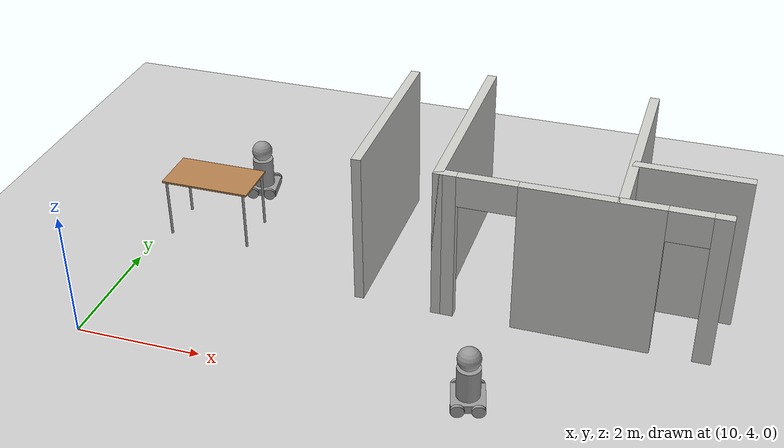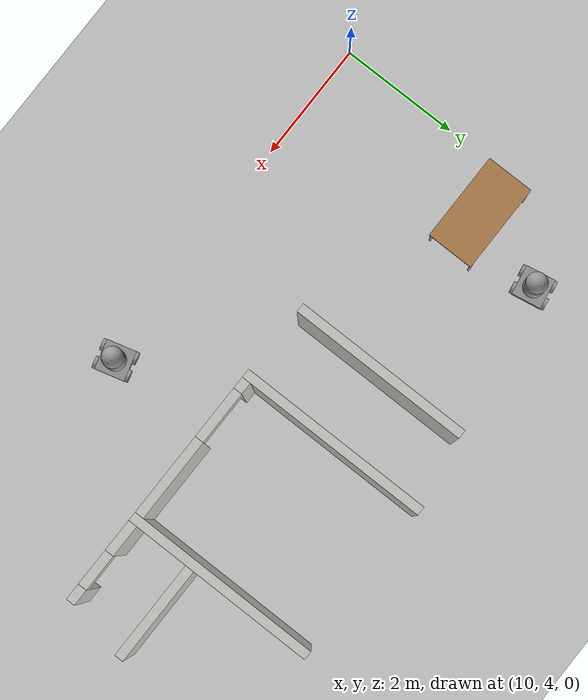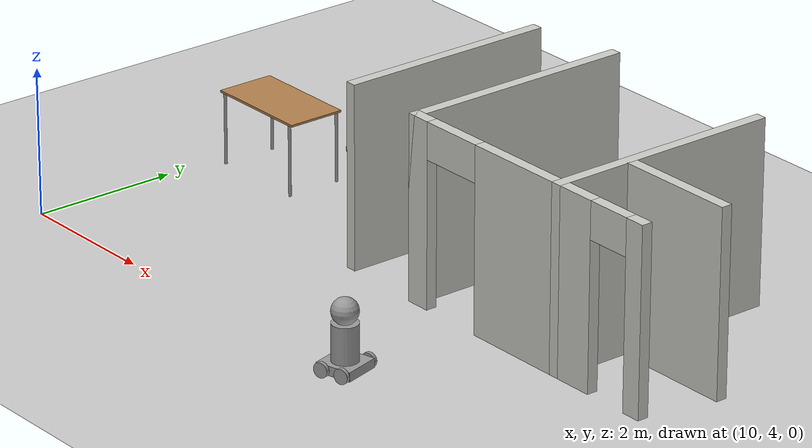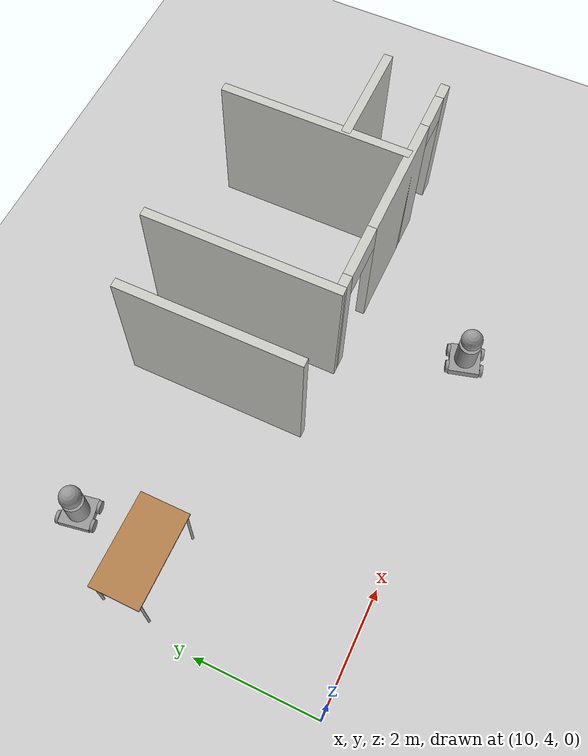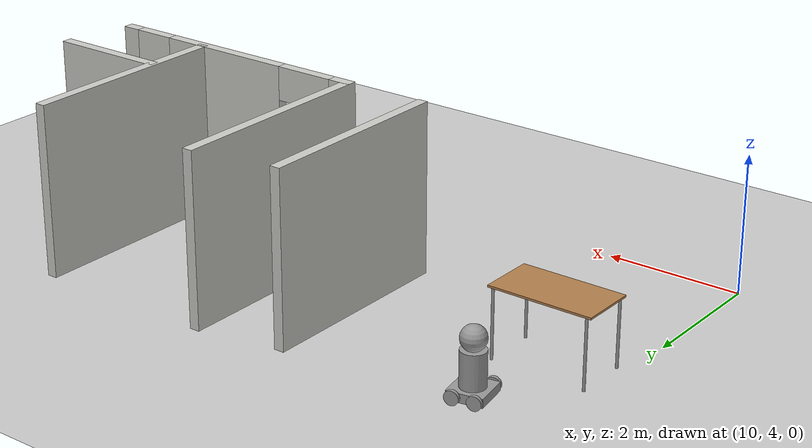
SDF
<sdf version="1.6">
 <world name="default">
  <model name="ground_plane">
   <static>1</static>
   <link name="link">
    <collision name="collision">
     <geometry><plane><normal>0 0 1</normal><size>100 100</size></plane></geometry>
     <surface>
      <contact><collide_bitmask>65535</collide_bitmask></contact>
      <friction><ode><mu>100</mu><mu2>50</mu2></ode></friction>
     </surface>
    </collision>
    <visual name="visual">
     <cast_shadows>0</cast_shadows>
     <geometry><plane><normal>0 0 1</normal><size>100 100</size></plane></geometry>
     <material>
      <script><uri>file://media/materials/scripts/gazebo.material</uri><name>Gazebo/Grey</name></script>
     </material>
    </visual>
   </link>
  </model>
  <model name="newOffice">
   <pose>10.3935 1.72643 0 0 -0 0</pose>
   <link name="Wall_13">
    <collision name="Wall_13_Collision">
     <geometry><box><size>3.25 0.15 2.5</size></box></geometry>
     <pose>0 0 1.25 0 -0 0</pose>
    </collision>
    <visual name="Wall_13_Visual">
     <pose>0 0 1.25 0 -0 0</pose>
     <geometry><box><size>3.25 0.15 2.5</size></box></geometry>
     <material>
      <script><uri>file://media/materials/scripts/gazebo.material</uri><name>Gazebo/CeilingTiled</name></script>
      <ambient>0.760784 0.662745 0.627451 1</ambient>
     </material>
     <meta><layer>0</layer></meta>
    </visual>
    <pose>4.6433 5.89365 0 0 0 -1.5708</pose>
   </link>
   <link name="Wall_14">
    <pose>6.6933 4.34365 0 0 -0 0</pose>
    <visual name="Wall_14_Visual_0">
     <pose>-1.94946 0 1.25 0 -0 0</pose>
     <geometry><box><size>0.351082 0.15 2.5</size></box></geometry>
     <material>
      <script><uri>file://media/materials/scripts/gazebo.material</uri><name>Gazebo/CeilingTiled</name></script>
      <ambient>0.760784 0.662745 0.627451 1</ambient>
     </material>
     <meta><layer>0</layer></meta>
    </visual>
    <collision name="Wall_14_Collision_0">
     <geometry><box><size>0.351082 0.15 2.5</size></box></geometry>
     <pose>-1.94946 0 1.25 0 -0 0</pose>
    </collision>
    <visual name="Wall_14_Visual_1">
     <pose>0.175003 0 1.25 0 -0 0</pose>
     <geometry><box><size>2.09784 0.15 2.5</size></box></geometry>
     <material>
      <script><uri>file://media/materials/scripts/gazebo.material</uri><name>Gazebo/CeilingTiled</name></script>
      <ambient>0.760784 0.662745 0.627451 1</ambient>
     </material>
     <meta><layer>0</layer></meta>
    </visual>
    <collision name="Wall_14_Collision_1">
     <geometry><box><size>2.09784 0.15 2.5</size></box></geometry>
     <pose>0.175003 0 1.25 0 -0 0</pose>
    </collision>
    <visual name="Wall_14_Visual_2">
     <pose>1.98681 0 1.25 0 -0 0</pose>
     <geometry><box><size>0.276388 0.15 2.5</size></box></geometry>
     <material>
      <script><uri>file://media/materials/scripts/gazebo.material</uri><name>Gazebo/CeilingTiled</name></script>
      <ambient>0.760784 0.662745 0.627451 1</ambient>
     </material>
     <meta><layer>0</layer></meta>
    </visual>
    <collision name="Wall_14_Collision_2">
     <geometry><box><size>0.276388 0.15 2.5</size></box></geometry>
     <pose>1.98681 0 1.25 0 -0 0</pose>
    </collision>
    <visual name="Wall_14_Visual_3">
     <pose>-1.32392 0 2.25 0 -0 0</pose>
     <geometry><box><size>0.9 0.15 0.5</size></box></geometry>
     <material>
      <script><uri>file://media/materials/scripts/gazebo.material</uri><name>Gazebo/CeilingTiled</name></script>
      <ambient>0.760784 0.662745 0.627451 1</ambient>
     </material>
     <meta><layer>0</layer></meta>
    </visual>
    <collision name="Wall_14_Collision_3">
     <geometry><box><size>0.9 0.15 0.5</size></box></geometry>
     <pose>-1.32392 0 2.25 0 -0 0</pose>
    </collision>
    <visual name="Wall_14_Visual_4">
     <pose>1.53627 0 2.25 0 -0 0</pose>
     <geometry><box><size>0.624688 0.15 0.5</size></box></geometry>
     <material>
      <script><uri>file://media/materials/scripts/gazebo.material</uri><name>Gazebo/CeilingTiled</name></script>
      <ambient>0.760784 0.662745 0.627451 1</ambient>
     </material>
     <meta><layer>0</layer></meta>
    </visual>
    <collision name="Wall_14_Collision_4">
     <geometry><box><size>0.624688 0.15 0.5</size></box></geometry>
     <pose>1.53627 0 2.25 0 -0 0</pose>
    </collision>
   </link>
   <link name="Wall_16">
    <collision name="Wall_16_Collision">
     <geometry><box><size>3.25 0.15 2.5</size></box></geometry>
     <pose>0 0 1.25 0 -0 0</pose>
    </collision>
    <visual name="Wall_16_Visual">
     <pose>0 0 1.25 0 -0 0</pose>
     <geometry><box><size>3.25 0.15 2.5</size></box></geometry>
     <material>
      <script><uri>file://media/materials/scripts/gazebo.material</uri><name>Gazebo/CeilingTiled</name></script>
      <ambient>0.760784 0.662745 0.627451 1</ambient>
     </material>
     <meta><layer>0</layer></meta>
    </visual>
    <pose>7.29516 5.89365 0 0 0 -1.5708</pose>
   </link>
   <link name="Wall_18">
    <collision name="Wall_18_Collision">
     <geometry><box><size>1.75 0.15 2.5</size></box></geometry>
     <pose>0 0 1.25 0 -0 0</pose>
    </collision>
    <visual name="Wall_18_Visual">
     <pose>0 0 1.25 0 -0 0</pose>
     <geometry><box><size>1.75 0.15 2.5</size></box></geometry>
     <material>
      <script><uri>file://media/materials/scripts/gazebo.material</uri><name>Gazebo/CeilingTiled</name></script>
      <ambient>0.760784 0.662745 0.627451 1</ambient>
     </material>
     <meta><layer>0</layer></meta>
    </visual>
    <pose>8.14169 5.3966 0 0 -0 0</pose>
   </link>
   <link name="Wall_9">
    <collision name="Wall_9_Collision">
     <geometry><box><size>3 0.15 2.5</size></box></geometry>
     <pose>0 0 1.25 0 -0 0</pose>
    </collision>
    <visual name="Wall_9_Visual">
     <pose>0 0 1.25 0 -0 0</pose>
     <geometry><box><size>3 0.15 2.5</size></box></geometry>
     <material>
      <script><uri>file://media/materials/scripts/gazebo.material</uri><name>Gazebo/CeilingTiled</name></script>
      <ambient>0.760784 0.662745 0.627451 1</ambient>
     </material>
     <meta><layer>0</layer></meta>
    </visual>
    <pose>3.39789 5.79808 0 0 -0 1.5708</pose>
   </link>
   <static>1</static>
  </model>
  <model name="miniRobo">
   <link name="link_0">
    <pose>0 0 -0.145 0 -0 0</pose>
    <inertial>
     <mass>1</mass>
     <inertia>
      <ixx>0.166667</ixx>
      <ixy>0</ixy>
      <ixz>0</ixz>
      <iyy>0.166667</iyy>
      <iyz>0</iyz>
      <izz>0.166667</izz>
     </inertia>
    </inertial>
    <visual name="visual">
     <geometry><box><size>0.5 0.5 0.125</size></box></geometry>
     <material>
      <lighting>1</lighting>
      <script><uri>file://media/materials/scripts/gazebo.material</uri><name>Gazebo/Grey</name></script>
      <shader type="pixel"><normal_map>__default__</normal_map></shader>
      <ambient>0.3 0.3 0.3 1</ambient>
      <diffuse>0.7 0.7 0.7 1</diffuse>
      <specular>0.01 0.01 0.01 1</specular>
      <emissive>0 0 0 1</emissive>
     </material>
    </visual>
    <collision name="collision">
     <geometry><box><size>0.5 0.5 0.125</size></box></geometry>
     <surface>
      <friction>
       <ode><mu>1</mu><mu2>1</mu2><fdir1>0 0 0</fdir1><slip1>0</slip1><slip2>0</slip2></ode>
       <torsional>
        <coefficient>1</coefficient>
        <patch_radius>0</patch_radius>
        <surface_radius>0</surface_radius>
        <use_patch_radius>1</use_patch_radius>
        <ode><slip>0</slip></ode>
       </torsional>
      </friction>
      <bounce><restitution_coefficient>0</restitution_coefficient><threshold>1e+06</threshold></bounce>
      <contact>
       <collide_without_contact>0</collide_without_contact>
       <collide_without_contact_bitmask>1</collide_without_contact_bitmask>
       <collide_bitmask>1</collide_bitmask>
       <ode>
        <soft_cfm>0</soft_cfm>
        <soft_erp>0.2</soft_erp>
        <kp>1e+13</kp>
        <kd>1</kd>
        <max_vel>0.01</max_vel>
        <min_depth>0</min_depth>
       </ode>
       <bullet>
        <split_impulse>1</split_impulse>
        <split_impulse_penetration_threshold>-0.01</split_impulse_penetration_threshold>
        <soft_cfm>0</soft_cfm>
        <soft_erp>0.2</soft_erp>
        <kp>1e+13</kp>
        <kd>1</kd>
       </bullet>
      </contact>
     </surface>
    </collision>
   </link>
   <link name="link_1_clone">
    <pose>0.15 -0.27501 -0.145 0 -0 0</pose>
    <inertial>
     <mass>1</mass>
     <inertia><ixx>0.145833</ixx><ixy>0</ixy><ixz>0</ixz><iyy>0.145833</iyy><iyz>0</iyz><izz>0.125</izz></inertia>
    </inertial>
    <visual name="visual">
     <pose>0 0 0 1.5707 -0 0</pose>
     <geometry><cylinder><radius>0.1</radius><length>0.05</length></cylinder></geometry>
     <material>
      <lighting>1</lighting>
      <script><uri>file://media/materials/scripts/gazebo.material</uri><name>Gazebo/Grey</name></script>
      <shader type="pixel"><normal_map>__default__</normal_map></shader>
      <ambient>0.3 0.3 0.3 1</ambient>
      <diffuse>0.7 0.7 0.7 1</diffuse>
      <specular>0.01 0.01 0.01 1</specular>
      <emissive>0 0 0 1</emissive>
     </material>
    </visual>
    <collision name="collision">
     <pose>0 0 0 1.5707 -0 0</pose>
     <geometry><cylinder><radius>0.1</radius><length>0.05</length></cylinder></geometry>
     <surface>
      <friction>
       <ode><mu>1</mu><mu2>1</mu2><fdir1>0 0 0</fdir1><slip1>0</slip1><slip2>0</slip2></ode>
       <torsional>
        <coefficient>1</coefficient>
        <patch_radius>0</patch_radius>
        <surface_radius>0</surface_radius>
        <use_patch_radius>1</use_patch_radius>
        <ode><slip>0</slip></ode>
       </torsional>
      </friction>
      <bounce><restitution_coefficient>0</restitution_coefficient><threshold>1e+06</threshold></bounce>
      <contact>
       <collide_without_contact>0</collide_without_contact>
       <collide_without_contact_bitmask>1</collide_without_contact_bitmask>
       <collide_bitmask>1</collide_bitmask>
       <ode>
        <soft_cfm>0</soft_cfm>
        <soft_erp>0.2</soft_erp>
        <kp>1e+13</kp>
        <kd>1</kd>
        <max_vel>0.01</max_vel>
        <min_depth>0</min_depth>
       </ode>
       <bullet>
        <split_impulse>1</split_impulse>
        <split_impulse_penetration_threshold>-0.01</split_impulse_penetration_threshold>
        <soft_cfm>0</soft_cfm>
        <soft_erp>0.2</soft_erp>
        <kp>1e+13</kp>
        <kd>1</kd>
       </bullet>
      </contact>
     </surface>
    </collision>
   </link>
   <link name="link_1_clone_0">
    <pose>-0.15 0.27501 -0.145 0 -0 0</pose>
    <inertial>
     <mass>1</mass>
     <inertia><ixx>0.145833</ixx><ixy>0</ixy><ixz>0</ixz><iyy>0.145833</iyy><iyz>0</iyz><izz>0.125</izz></inertia>
    </inertial>
    <visual name="visual">
     <pose>0 0 0 1.5707 -0 0</pose>
     <geometry><cylinder><radius>0.1</radius><length>0.05</length></cylinder></geometry>
     <material>
      <lighting>1</lighting>
      <script><uri>file://media/materials/scripts/gazebo.material</uri><name>Gazebo/Grey</name></script>
      <shader type="pixel"><normal_map>__default__</normal_map></shader>
      <ambient>0.3 0.3 0.3 1</ambient>
      <diffuse>0.7 0.7 0.7 1</diffuse>
      <specular>0.01 0.01 0.01 1</specular>
      <emissive>0 0 0 1</emissive>
     </material>
    </visual>
    <collision name="collision">
     <pose>0 0 0 1.5707 -0 0</pose>
     <geometry><cylinder><radius>0.1</radius><length>0.05</length></cylinder></geometry>
     <surface>
      <friction>
       <ode><mu>1</mu><mu2>1</mu2><fdir1>0 0 0</fdir1><slip1>0</slip1><slip2>0</slip2></ode>
       <torsional>
        <coefficient>1</coefficient>
        <patch_radius>0</patch_radius>
        <surface_radius>0</surface_radius>
        <use_patch_radius>1</use_patch_radius>
        <ode><slip>0</slip></ode>
       </torsional>
      </friction>
      <bounce><restitution_coefficient>0</restitution_coefficient><threshold>1e+06</threshold></bounce>
      <contact>
       <collide_without_contact>0</collide_without_contact>
       <collide_without_contact_bitmask>1</collide_without_contact_bitmask>
       <collide_bitmask>1</collide_bitmask>
       <ode>
        <soft_cfm>0</soft_cfm>
        <soft_erp>0.2</soft_erp>
        <kp>1e+13</kp>
        <kd>1</kd>
        <max_vel>0.01</max_vel>
        <min_depth>0</min_depth>
       </ode>
       <bullet>
        <split_impulse>1</split_impulse>
        <split_impulse_penetration_threshold>-0.01</split_impulse_penetration_threshold>
        <soft_cfm>0</soft_cfm>
        <soft_erp>0.2</soft_erp>
        <kp>1e+13</kp>
        <kd>1</kd>
       </bullet>
      </contact>
     </surface>
    </collision>
   </link>
   <link name="link_1_clone_1">
    <pose>0.15 0.27501 -0.145 0 -0 0</pose>
    <inertial>
     <mass>1</mass>
     <inertia><ixx>0.145833</ixx><ixy>0</ixy><ixz>0</ixz><iyy>0.145833</iyy><iyz>0</iyz><izz>0.125</izz></inertia>
    </inertial>
    <visual name="visual">
     <pose>0 0 0 1.5707 -0 0</pose>
     <geometry><cylinder><radius>0.1</radius><length>0.05</length></cylinder></geometry>
     <material>
      <lighting>1</lighting>
      <script><uri>file://media/materials/scripts/gazebo.material</uri><name>Gazebo/Grey</name></script>
      <shader type="pixel"><normal_map>__default__</normal_map></shader>
      <ambient>0.3 0.3 0.3 1</ambient>
      <diffuse>0.7 0.7 0.7 1</diffuse>
      <specular>0.01 0.01 0.01 1</specular>
      <emissive>0 0 0 1</emissive>
     </material>
    </visual>
    <collision name="collision">
     <pose>0 0 0 1.5707 -0 0</pose>
     <geometry><cylinder><radius>0.1</radius><length>0.05</length></cylinder></geometry>
     <surface>
      <friction>
       <ode><mu>1</mu><mu2>1</mu2><fdir1>0 0 0</fdir1><slip1>0</slip1><slip2>0</slip2></ode>
       <torsional>
        <coefficient>1</coefficient>
        <patch_radius>0</patch_radius>
        <surface_radius>0</surface_radius>
        <use_patch_radius>1</use_patch_radius>
        <ode><slip>0</slip></ode>
       </torsional>
      </friction>
      <bounce><restitution_coefficient>0</restitution_coefficient><threshold>1e+06</threshold></bounce>
      <contact>
       <collide_without_contact>0</collide_without_contact>
       <collide_without_contact_bitmask>1</collide_without_contact_bitmask>
       <collide_bitmask>1</collide_bitmask>
       <ode>
        <soft_cfm>0</soft_cfm>
        <soft_erp>0.2</soft_erp>
        <kp>1e+13</kp>
        <kd>1</kd>
        <max_vel>0.01</max_vel>
        <min_depth>0</min_depth>
       </ode>
       <bullet>
        <split_impulse>1</split_impulse>
        <split_impulse_penetration_threshold>-0.01</split_impulse_penetration_threshold>
        <soft_cfm>0</soft_cfm>
        <soft_erp>0.2</soft_erp>
        <kp>1e+13</kp>
        <kd>1</kd>
       </bullet>
      </contact>
     </surface>
    </collision>
   </link>
   <link name="link_1_clone_1_clone">
    <pose>-0.15 -0.27501 -0.145 0 -0 0</pose>
    <inertial>
     <mass>1</mass>
     <inertia><ixx>0.145833</ixx><ixy>0</ixy><ixz>0</ixz><iyy>0.145833</iyy><iyz>0</iyz><izz>0.125</izz></inertia>
    </inertial>
    <visual name="visual">
     <pose>0 0 0 1.5707 -0 0</pose>
     <geometry><cylinder><radius>0.1</radius><length>0.05</length></cylinder></geometry>
     <material>
      <lighting>1</lighting>
      <script><uri>file://media/materials/scripts/gazebo.material</uri><name>Gazebo/Grey</name></script>
      <shader type="pixel"><normal_map>__default__</normal_map></shader>
      <ambient>0.3 0.3 0.3 1</ambient>
      <diffuse>0.7 0.7 0.7 1</diffuse>
      <specular>0.01 0.01 0.01 1</specular>
      <emissive>0 0 0 1</emissive>
     </material>
    </visual>
    <collision name="collision">
     <pose>0 0 0 1.5707 -0 0</pose>
     <geometry><cylinder><radius>0.1</radius><length>0.05</length></cylinder></geometry>
     <surface>
      <friction>
       <ode><mu>1</mu><mu2>1</mu2><fdir1>0 0 0</fdir1><slip1>0</slip1><slip2>0</slip2></ode>
       <torsional>
        <coefficient>1</coefficient>
        <patch_radius>0</patch_radius>
        <surface_radius>0</surface_radius>
        <use_patch_radius>1</use_patch_radius>
        <ode><slip>0</slip></ode>
       </torsional>
      </friction>
      <bounce><restitution_coefficient>0</restitution_coefficient><threshold>1e+06</threshold></bounce>
      <contact>
       <collide_without_contact>0</collide_without_contact>
       <collide_without_contact_bitmask>1</collide_without_contact_bitmask>
       <collide_bitmask>1</collide_bitmask>
       <ode>
        <soft_cfm>0</soft_cfm>
        <soft_erp>0.2</soft_erp>
        <kp>1e+13</kp>
        <kd>1</kd>
        <max_vel>0.01</max_vel>
        <min_depth>0</min_depth>
       </ode>
       <bullet>
        <split_impulse>1</split_impulse>
        <split_impulse_penetration_threshold>-0.01</split_impulse_penetration_threshold>
        <soft_cfm>0</soft_cfm>
        <soft_erp>0.2</soft_erp>
        <kp>1e+13</kp>
        <kd>1</kd>
       </bullet>
      </contact>
     </surface>
    </collision>
   </link>
   <link name="link_2">
    <pose>0 0 0.1625 0 -0 0</pose>
    <inertial>
     <mass>1</mass>
     <inertia><ixx>0.145833</ixx><ixy>0</ixy><ixz>0</ixz><iyy>0.145833</iyy><iyz>0</iyz><izz>0.125</izz></inertia>
    </inertial>
    <visual name="visual">
     <geometry><cylinder><radius>0.175</radius><length>0.5</length></cylinder></geometry>
     <material>
      <lighting>1</lighting>
      <script><uri>file://media/materials/scripts/gazebo.material</uri><name>Gazebo/Grey</name></script>
      <shader type="pixel"><normal_map>__default__</normal_map></shader>
      <ambient>0.3 0.3 0.3 1</ambient>
      <diffuse>0.7 0.7 0.7 1</diffuse>
      <specular>0.01 0.01 0.01 1</specular>
      <emissive>0 0 0 1</emissive>
     </material>
    </visual>
    <collision name="collision">
     <geometry><cylinder><radius>0.175</radius><length>0.5</length></cylinder></geometry>
     <surface>
      <friction>
       <ode><mu>1</mu><mu2>1</mu2><fdir1>0 0 0</fdir1><slip1>0</slip1><slip2>0</slip2></ode>
       <torsional>
        <coefficient>1</coefficient>
        <patch_radius>0</patch_radius>
        <surface_radius>0</surface_radius>
        <use_patch_radius>1</use_patch_radius>
        <ode><slip>0</slip></ode>
       </torsional>
      </friction>
      <bounce><restitution_coefficient>0</restitution_coefficient><threshold>1e+06</threshold></bounce>
      <contact>
       <collide_without_contact>0</collide_without_contact>
       <collide_without_contact_bitmask>1</collide_without_contact_bitmask>
       <collide_bitmask>1</collide_bitmask>
       <ode>
        <soft_cfm>0</soft_cfm>
        <soft_erp>0.2</soft_erp>
        <kp>1e+13</kp>
        <kd>1</kd>
        <max_vel>0.01</max_vel>
        <min_depth>0</min_depth>
       </ode>
       <bullet>
        <split_impulse>1</split_impulse>
        <split_impulse_penetration_threshold>-0.01</split_impulse_penetration_threshold>
        <soft_cfm>0</soft_cfm>
        <soft_erp>0.2</soft_erp>
        <kp>1e+13</kp>
        <kd>1</kd>
       </bullet>
      </contact>
     </surface>
    </collision>
   </link>
   <link name="link_3">
    <pose>0 0 0.5625 0 -0 0</pose>
    <inertial>
     <mass>1</mass>
     <inertia><ixx>0.1</ixx><ixy>0</ixy><ixz>0</ixz><iyy>0.1</iyy><iyz>0</iyz><izz>0.1</izz></inertia>
    </inertial>
    <visual name="visual">
     <geometry><sphere><radius>0.175</radius></sphere></geometry>
     <material>
      <lighting>1</lighting>
      <script><uri>file://media/materials/scripts/gazebo.material</uri><name>Gazebo/Grey</name></script>
      <shader type="pixel"><normal_map>__default__</normal_map></shader>
      <ambient>0.3 0.3 0.3 1</ambient>
      <diffuse>0.7 0.7 0.7 1</diffuse>
      <specular>0.01 0.01 0.01 1</specular>
      <emissive>0 0 0 1</emissive>
     </material>
    </visual>
    <collision name="collision">
     <geometry><sphere><radius>0.175</radius></sphere></geometry>
     <surface>
      <friction>
       <ode><mu>1</mu><mu2>1</mu2><fdir1>0 0 0</fdir1><slip1>0</slip1><slip2>0</slip2></ode>
       <torsional>
        <coefficient>1</coefficient>
        <patch_radius>0</patch_radius>
        <surface_radius>0</surface_radius>
        <use_patch_radius>1</use_patch_radius>
        <ode><slip>0</slip></ode>
       </torsional>
      </friction>
      <bounce><restitution_coefficient>0</restitution_coefficient><threshold>1e+06</threshold></bounce>
      <contact>
       <collide_without_contact>0</collide_without_contact>
       <collide_without_contact_bitmask>1</collide_without_contact_bitmask>
       <collide_bitmask>1</collide_bitmask>
       <ode>
        <soft_cfm>0</soft_cfm>
        <soft_erp>0.2</soft_erp>
        <kp>1e+13</kp>
        <kd>1</kd>
        <max_vel>0.01</max_vel>
        <min_depth>0</min_depth>
       </ode>
       <bullet>
        <split_impulse>1</split_impulse>
        <split_impulse_penetration_threshold>-0.01</split_impulse_penetration_threshold>
        <soft_cfm>0</soft_cfm>
        <soft_erp>0.2</soft_erp>
        <kp>1e+13</kp>
        <kd>1</kd>
       </bullet>
      </contact>
     </surface>
    </collision>
   </link>
   <joint name="link_0_JOINT_1" type="revolute">
    <parent>link_0</parent>
    <child>link_1_clone_0</child>
    <axis>
     <xyz>0 0 1</xyz>
     <use_parent_model_frame>0</use_parent_model_frame>
     <limit>
      <lower>-1.79769e+308</lower>
      <upper>1.79769e+308</upper>
      <effort>-1</effort>
      <velocity>-1</velocity>
     </limit>
     <dynamics>
      <spring_reference>0</spring_reference>
      <spring_stiffness>0</spring_stiffness>
      <damping>0</damping>
     </dynamics>
    </axis>
    <physics>
     <ode><limit><cfm>0</cfm><erp>0.2</erp></limit><suspension><cfm>0</cfm><erp>0.2</erp></suspension></ode>
    </physics>
   </joint>
   <joint name="link_0_JOINT_2" type="revolute">
    <parent>link_0</parent>
    <child>link_1_clone_1_clone</child>
    <axis>
     <xyz>0 0 1</xyz>
     <use_parent_model_frame>0</use_parent_model_frame>
     <limit>
      <lower>-1.79769e+308</lower>
      <upper>1.79769e+308</upper>
      <effort>-1</effort>
      <velocity>-1</velocity>
     </limit>
     <dynamics>
      <spring_reference>0</spring_reference>
      <spring_stiffness>0</spring_stiffness>
      <damping>0</damping>
     </dynamics>
    </axis>
    <physics>
     <ode><limit><cfm>0</cfm><erp>0.2</erp></limit><suspension><cfm>0</cfm><erp>0.2</erp></suspension></ode>
    </physics>
   </joint>
   <joint name="link_0_JOINT_3" type="revolute">
    <parent>link_0</parent>
    <child>link_1_clone_1</child>
    <axis>
     <xyz>0 0 1</xyz>
     <use_parent_model_frame>0</use_parent_model_frame>
     <limit>
      <lower>-1.79769e+308</lower>
      <upper>1.79769e+308</upper>
      <effort>-1</effort>
      <velocity>-1</velocity>
     </limit>
     <dynamics>
      <spring_reference>0</spring_reference>
      <spring_stiffness>0</spring_stiffness>
      <damping>0</damping>
     </dynamics>
    </axis>
    <physics>
     <ode><limit><cfm>0</cfm><erp>0.2</erp></limit><suspension><cfm>0</cfm><erp>0.2</erp></suspension></ode>
    </physics>
   </joint>
   <joint name="link_0_JOINT_4" type="revolute">
    <parent>link_0</parent>
    <child>link_1_clone</child>
    <axis>
     <xyz>0 0 1</xyz>
     <use_parent_model_frame>0</use_parent_model_frame>
     <limit>
      <lower>-1.79769e+308</lower>
      <upper>1.79769e+308</upper>
      <effort>-1</effort>
      <velocity>-1</velocity>
     </limit>
     <dynamics>
      <spring_reference>0</spring_reference>
      <spring_stiffness>0</spring_stiffness>
      <damping>0</damping>
     </dynamics>
    </axis>
    <physics>
     <ode><limit><cfm>0</cfm><erp>0.2</erp></limit><suspension><cfm>0</cfm><erp>0.2</erp></suspension></ode>
    </physics>
   </joint>
   <joint name="link_0_JOINT_5" type="fixed">
    <parent>link_0</parent>
    <child>link_2</child>
    <physics>
     <ode><limit><cfm>0</cfm><erp>0.2</erp></limit><suspension><cfm>0</cfm><erp>0.2</erp></suspension></ode>
    </physics>
   </joint>
   <joint name="link_2_JOINT_6" type="fixed">
    <parent>link_2</parent>
    <child>link_3</child>
    <physics>
     <ode><limit><cfm>0</cfm><erp>0.2</erp></limit><suspension><cfm>0</cfm><erp>0.2</erp></suspension></ode>
    </physics>
   </joint>
   <static>0</static>
   <pose>16.052 4.14567 0.245003 0 -2e-06 0.267063</pose>
  </model>
  <model name="miniRobo_clone">
   <link name="link_0">
    <pose>0 0 -0.145 0 -0 0</pose>
    <inertial>
     <mass>1</mass>
     <inertia>
      <ixx>0.166667</ixx>
      <ixy>0</ixy>
      <ixz>0</ixz>
      <iyy>0.166667</iyy>
      <iyz>0</iyz>
      <izz>0.166667</izz>
     </inertia>
    </inertial>
    <visual name="visual">
     <geometry><box><size>0.5 0.5 0.125</size></box></geometry>
     <material>
      <lighting>1</lighting>
      <script><uri>file://media/materials/scripts/gazebo.material</uri><name>Gazebo/Grey</name></script>
      <shader type="pixel"><normal_map>__default__</normal_map></shader>
      <ambient>0.3 0.3 0.3 1</ambient>
      <diffuse>0.7 0.7 0.7 1</diffuse>
      <specular>0.01 0.01 0.01 1</specular>
      <emissive>0 0 0 1</emissive>
     </material>
    </visual>
    <collision name="collision">
     <geometry><box><size>0.5 0.5 0.125</size></box></geometry>
     <surface>
      <friction>
       <ode><mu>1</mu><mu2>1</mu2><fdir1>0 0 0</fdir1><slip1>0</slip1><slip2>0</slip2></ode>
       <torsional>
        <coefficient>1</coefficient>
        <patch_radius>0</patch_radius>
        <surface_radius>0</surface_radius>
        <use_patch_radius>1</use_patch_radius>
        <ode><slip>0</slip></ode>
       </torsional>
      </friction>
      <bounce><restitution_coefficient>0</restitution_coefficient><threshold>1e+06</threshold></bounce>
      <contact>
       <collide_without_contact>0</collide_without_contact>
       <collide_without_contact_bitmask>1</collide_without_contact_bitmask>
       <collide_bitmask>1</collide_bitmask>
       <ode>
        <soft_cfm>0</soft_cfm>
        <soft_erp>0.2</soft_erp>
        <kp>1e+13</kp>
        <kd>1</kd>
        <max_vel>0.01</max_vel>
        <min_depth>0</min_depth>
       </ode>
       <bullet>
        <split_impulse>1</split_impulse>
        <split_impulse_penetration_threshold>-0.01</split_impulse_penetration_threshold>
        <soft_cfm>0</soft_cfm>
        <soft_erp>0.2</soft_erp>
        <kp>1e+13</kp>
        <kd>1</kd>
       </bullet>
      </contact>
     </surface>
    </collision>
   </link>
   <link name="link_1_clone">
    <pose>0.15 -0.27501 -0.145 0 -0 0</pose>
    <inertial>
     <mass>1</mass>
     <inertia><ixx>0.145833</ixx><ixy>0</ixy><ixz>0</ixz><iyy>0.145833</iyy><iyz>0</iyz><izz>0.125</izz></inertia>
    </inertial>
    <visual name="visual">
     <pose>0 0 0 1.5707 -0 0</pose>
     <geometry><cylinder><radius>0.1</radius><length>0.05</length></cylinder></geometry>
     <material>
      <lighting>1</lighting>
      <script><uri>file://media/materials/scripts/gazebo.material</uri><name>Gazebo/Grey</name></script>
      <shader type="pixel"><normal_map>__default__</normal_map></shader>
      <ambient>0.3 0.3 0.3 1</ambient>
      <diffuse>0.7 0.7 0.7 1</diffuse>
      <specular>0.01 0.01 0.01 1</specular>
      <emissive>0 0 0 1</emissive>
     </material>
    </visual>
    <collision name="collision">
     <pose>0 0 0 1.5707 -0 0</pose>
     <geometry><cylinder><radius>0.1</radius><length>0.05</length></cylinder></geometry>
     <surface>
      <friction>
       <ode><mu>1</mu><mu2>1</mu2><fdir1>0 0 0</fdir1><slip1>0</slip1><slip2>0</slip2></ode>
       <torsional>
        <coefficient>1</coefficient>
        <patch_radius>0</patch_radius>
        <surface_radius>0</surface_radius>
        <use_patch_radius>1</use_patch_radius>
        <ode><slip>0</slip></ode>
       </torsional>
      </friction>
      <bounce><restitution_coefficient>0</restitution_coefficient><threshold>1e+06</threshold></bounce>
      <contact>
       <collide_without_contact>0</collide_without_contact>
       <collide_without_contact_bitmask>1</collide_without_contact_bitmask>
       <collide_bitmask>1</collide_bitmask>
       <ode>
        <soft_cfm>0</soft_cfm>
        <soft_erp>0.2</soft_erp>
        <kp>1e+13</kp>
        <kd>1</kd>
        <max_vel>0.01</max_vel>
        <min_depth>0</min_depth>
       </ode>
       <bullet>
        <split_impulse>1</split_impulse>
        <split_impulse_penetration_threshold>-0.01</split_impulse_penetration_threshold>
        <soft_cfm>0</soft_cfm>
        <soft_erp>0.2</soft_erp>
        <kp>1e+13</kp>
        <kd>1</kd>
       </bullet>
      </contact>
     </surface>
    </collision>
   </link>
   <link name="link_1_clone_0">
    <pose>-0.15 0.27501 -0.145 0 -0 0</pose>
    <inertial>
     <mass>1</mass>
     <inertia><ixx>0.145833</ixx><ixy>0</ixy><ixz>0</ixz><iyy>0.145833</iyy><iyz>0</iyz><izz>0.125</izz></inertia>
    </inertial>
    <visual name="visual">
     <pose>0 0 0 1.5707 -0 0</pose>
     <geometry><cylinder><radius>0.1</radius><length>0.05</length></cylinder></geometry>
     <material>
      <lighting>1</lighting>
      <script><uri>file://media/materials/scripts/gazebo.material</uri><name>Gazebo/Grey</name></script>
      <shader type="pixel"><normal_map>__default__</normal_map></shader>
      <ambient>0.3 0.3 0.3 1</ambient>
      <diffuse>0.7 0.7 0.7 1</diffuse>
      <specular>0.01 0.01 0.01 1</specular>
      <emissive>0 0 0 1</emissive>
     </material>
    </visual>
    <collision name="collision">
     <pose>0 0 0 1.5707 -0 0</pose>
     <geometry><cylinder><radius>0.1</radius><length>0.05</length></cylinder></geometry>
     <surface>
      <friction>
       <ode><mu>1</mu><mu2>1</mu2><fdir1>0 0 0</fdir1><slip1>0</slip1><slip2>0</slip2></ode>
       <torsional>
        <coefficient>1</coefficient>
        <patch_radius>0</patch_radius>
        <surface_radius>0</surface_radius>
        <use_patch_radius>1</use_patch_radius>
        <ode><slip>0</slip></ode>
       </torsional>
      </friction>
      <bounce><restitution_coefficient>0</restitution_coefficient><threshold>1e+06</threshold></bounce>
      <contact>
       <collide_without_contact>0</collide_without_contact>
       <collide_without_contact_bitmask>1</collide_without_contact_bitmask>
       <collide_bitmask>1</collide_bitmask>
       <ode>
        <soft_cfm>0</soft_cfm>
        <soft_erp>0.2</soft_erp>
        <kp>1e+13</kp>
        <kd>1</kd>
        <max_vel>0.01</max_vel>
        <min_depth>0</min_depth>
       </ode>
       <bullet>
        <split_impulse>1</split_impulse>
        <split_impulse_penetration_threshold>-0.01</split_impulse_penetration_threshold>
        <soft_cfm>0</soft_cfm>
        <soft_erp>0.2</soft_erp>
        <kp>1e+13</kp>
        <kd>1</kd>
       </bullet>
      </contact>
     </surface>
    </collision>
   </link>
   <link name="link_1_clone_1">
    <pose>0.15 0.27501 -0.145 0 -0 0</pose>
    <inertial>
     <mass>1</mass>
     <inertia><ixx>0.145833</ixx><ixy>0</ixy><ixz>0</ixz><iyy>0.145833</iyy><iyz>0</iyz><izz>0.125</izz></inertia>
    </inertial>
    <visual name="visual">
     <pose>0 0 0 1.5707 -0 0</pose>
     <geometry><cylinder><radius>0.1</radius><length>0.05</length></cylinder></geometry>
     <material>
      <lighting>1</lighting>
      <script><uri>file://media/materials/scripts/gazebo.material</uri><name>Gazebo/Grey</name></script>
      <shader type="pixel"><normal_map>__default__</normal_map></shader>
      <ambient>0.3 0.3 0.3 1</ambient>
      <diffuse>0.7 0.7 0.7 1</diffuse>
      <specular>0.01 0.01 0.01 1</specular>
      <emissive>0 0 0 1</emissive>
     </material>
    </visual>
    <collision name="collision">
     <pose>0 0 0 1.5707 -0 0</pose>
     <geometry><cylinder><radius>0.1</radius><length>0.05</length></cylinder></geometry>
     <surface>
      <friction>
       <ode><mu>1</mu><mu2>1</mu2><fdir1>0 0 0</fdir1><slip1>0</slip1><slip2>0</slip2></ode>
       <torsional>
        <coefficient>1</coefficient>
        <patch_radius>0</patch_radius>
        <surface_radius>0</surface_radius>
        <use_patch_radius>1</use_patch_radius>
        <ode><slip>0</slip></ode>
       </torsional>
      </friction>
      <bounce><restitution_coefficient>0</restitution_coefficient><threshold>1e+06</threshold></bounce>
      <contact>
       <collide_without_contact>0</collide_without_contact>
       <collide_without_contact_bitmask>1</collide_without_contact_bitmask>
       <collide_bitmask>1</collide_bitmask>
       <ode>
        <soft_cfm>0</soft_cfm>
        <soft_erp>0.2</soft_erp>
        <kp>1e+13</kp>
        <kd>1</kd>
        <max_vel>0.01</max_vel>
        <min_depth>0</min_depth>
       </ode>
       <bullet>
        <split_impulse>1</split_impulse>
        <split_impulse_penetration_threshold>-0.01</split_impulse_penetration_threshold>
        <soft_cfm>0</soft_cfm>
        <soft_erp>0.2</soft_erp>
        <kp>1e+13</kp>
        <kd>1</kd>
       </bullet>
      </contact>
     </surface>
    </collision>
   </link>
   <link name="link_1_clone_1_clone">
    <pose>-0.15 -0.27501 -0.145 0 -0 0</pose>
    <inertial>
     <mass>1</mass>
     <inertia><ixx>0.145833</ixx><ixy>0</ixy><ixz>0</ixz><iyy>0.145833</iyy><iyz>0</iyz><izz>0.125</izz></inertia>
    </inertial>
    <visual name="visual">
     <pose>0 0 0 1.5707 -0 0</pose>
     <geometry><cylinder><radius>0.1</radius><length>0.05</length></cylinder></geometry>
     <material>
      <lighting>1</lighting>
      <script><uri>file://media/materials/scripts/gazebo.material</uri><name>Gazebo/Grey</name></script>
      <shader type="pixel"><normal_map>__default__</normal_map></shader>
      <ambient>0.3 0.3 0.3 1</ambient>
      <diffuse>0.7 0.7 0.7 1</diffuse>
      <specular>0.01 0.01 0.01 1</specular>
      <emissive>0 0 0 1</emissive>
     </material>
    </visual>
    <collision name="collision">
     <pose>0 0 0 1.5707 -0 0</pose>
     <geometry><cylinder><radius>0.1</radius><length>0.05</length></cylinder></geometry>
     <surface>
      <friction>
       <ode><mu>1</mu><mu2>1</mu2><fdir1>0 0 0</fdir1><slip1>0</slip1><slip2>0</slip2></ode>
       <torsional>
        <coefficient>1</coefficient>
        <patch_radius>0</patch_radius>
        <surface_radius>0</surface_radius>
        <use_patch_radius>1</use_patch_radius>
        <ode><slip>0</slip></ode>
       </torsional>
      </friction>
      <bounce><restitution_coefficient>0</restitution_coefficient><threshold>1e+06</threshold></bounce>
      <contact>
       <collide_without_contact>0</collide_without_contact>
       <collide_without_contact_bitmask>1</collide_without_contact_bitmask>
       <collide_bitmask>1</collide_bitmask>
       <ode>
        <soft_cfm>0</soft_cfm>
        <soft_erp>0.2</soft_erp>
        <kp>1e+13</kp>
        <kd>1</kd>
        <max_vel>0.01</max_vel>
        <min_depth>0</min_depth>
       </ode>
       <bullet>
        <split_impulse>1</split_impulse>
        <split_impulse_penetration_threshold>-0.01</split_impulse_penetration_threshold>
        <soft_cfm>0</soft_cfm>
        <soft_erp>0.2</soft_erp>
        <kp>1e+13</kp>
        <kd>1</kd>
       </bullet>
      </contact>
     </surface>
    </collision>
   </link>
   <link name="link_2">
    <pose>0 0 0.1625 0 -0 0</pose>
    <inertial>
     <mass>1</mass>
     <inertia><ixx>0.145833</ixx><ixy>0</ixy><ixz>0</ixz><iyy>0.145833</iyy><iyz>0</iyz><izz>0.125</izz></inertia>
    </inertial>
    <visual name="visual">
     <geometry><cylinder><radius>0.175</radius><length>0.5</length></cylinder></geometry>
     <material>
      <lighting>1</lighting>
      <script><uri>file://media/materials/scripts/gazebo.material</uri><name>Gazebo/Grey</name></script>
      <shader type="pixel"><normal_map>__default__</normal_map></shader>
      <ambient>0.3 0.3 0.3 1</ambient>
      <diffuse>0.7 0.7 0.7 1</diffuse>
      <specular>0.01 0.01 0.01 1</specular>
      <emissive>0 0 0 1</emissive>
     </material>
    </visual>
    <collision name="collision">
     <geometry><cylinder><radius>0.175</radius><length>0.5</length></cylinder></geometry>
     <surface>
      <friction>
       <ode><mu>1</mu><mu2>1</mu2><fdir1>0 0 0</fdir1><slip1>0</slip1><slip2>0</slip2></ode>
       <torsional>
        <coefficient>1</coefficient>
        <patch_radius>0</patch_radius>
        <surface_radius>0</surface_radius>
        <use_patch_radius>1</use_patch_radius>
        <ode><slip>0</slip></ode>
       </torsional>
      </friction>
      <bounce><restitution_coefficient>0</restitution_coefficient><threshold>1e+06</threshold></bounce>
      <contact>
       <collide_without_contact>0</collide_without_contact>
       <collide_without_contact_bitmask>1</collide_without_contact_bitmask>
       <collide_bitmask>1</collide_bitmask>
       <ode>
        <soft_cfm>0</soft_cfm>
        <soft_erp>0.2</soft_erp>
        <kp>1e+13</kp>
        <kd>1</kd>
        <max_vel>0.01</max_vel>
        <min_depth>0</min_depth>
       </ode>
       <bullet>
        <split_impulse>1</split_impulse>
        <split_impulse_penetration_threshold>-0.01</split_impulse_penetration_threshold>
        <soft_cfm>0</soft_cfm>
        <soft_erp>0.2</soft_erp>
        <kp>1e+13</kp>
        <kd>1</kd>
       </bullet>
      </contact>
     </surface>
    </collision>
   </link>
   <link name="link_3">
    <pose>0 0 0.5625 0 -0 0</pose>
    <inertial>
     <mass>1</mass>
     <inertia><ixx>0.1</ixx><ixy>0</ixy><ixz>0</ixz><iyy>0.1</iyy><iyz>0</iyz><izz>0.1</izz></inertia>
    </inertial>
    <visual name="visual">
     <geometry><sphere><radius>0.175</radius></sphere></geometry>
     <material>
      <lighting>1</lighting>
      <script><uri>file://media/materials/scripts/gazebo.material</uri><name>Gazebo/Grey</name></script>
      <shader type="pixel"><normal_map>__default__</normal_map></shader>
      <ambient>0.3 0.3 0.3 1</ambient>
      <diffuse>0.7 0.7 0.7 1</diffuse>
      <specular>0.01 0.01 0.01 1</specular>
      <emissive>0 0 0 1</emissive>
     </material>
    </visual>
    <collision name="collision">
     <geometry><sphere><radius>0.175</radius></sphere></geometry>
     <surface>
      <friction>
       <ode><mu>1</mu><mu2>1</mu2><fdir1>0 0 0</fdir1><slip1>0</slip1><slip2>0</slip2></ode>
       <torsional>
        <coefficient>1</coefficient>
        <patch_radius>0</patch_radius>
        <surface_radius>0</surface_radius>
        <use_patch_radius>1</use_patch_radius>
        <ode><slip>0</slip></ode>
       </torsional>
      </friction>
      <bounce><restitution_coefficient>0</restitution_coefficient><threshold>1e+06</threshold></bounce>
      <contact>
       <collide_without_contact>0</collide_without_contact>
       <collide_without_contact_bitmask>1</collide_without_contact_bitmask>
       <collide_bitmask>1</collide_bitmask>
       <ode>
        <soft_cfm>0</soft_cfm>
        <soft_erp>0.2</soft_erp>
        <kp>1e+13</kp>
        <kd>1</kd>
        <max_vel>0.01</max_vel>
        <min_depth>0</min_depth>
       </ode>
       <bullet>
        <split_impulse>1</split_impulse>
        <split_impulse_penetration_threshold>-0.01</split_impulse_penetration_threshold>
        <soft_cfm>0</soft_cfm>
        <soft_erp>0.2</soft_erp>
        <kp>1e+13</kp>
        <kd>1</kd>
       </bullet>
      </contact>
     </surface>
    </collision>
   </link>
   <joint name="link_0_JOINT_1" type="revolute">
    <parent>link_0</parent>
    <child>link_1_clone_0</child>
    <axis>
     <xyz>0 0 1</xyz>
     <use_parent_model_frame>0</use_parent_model_frame>
     <limit>
      <lower>-1.79769e+308</lower>
      <upper>1.79769e+308</upper>
      <effort>-1</effort>
      <velocity>-1</velocity>
     </limit>
     <dynamics>
      <spring_reference>0</spring_reference>
      <spring_stiffness>0</spring_stiffness>
      <damping>0</damping>
     </dynamics>
    </axis>
    <physics>
     <ode><limit><cfm>0</cfm><erp>0.2</erp></limit><suspension><cfm>0</cfm><erp>0.2</erp></suspension></ode>
    </physics>
   </joint>
   <joint name="link_0_JOINT_2" type="revolute">
    <parent>link_0</parent>
    <child>link_1_clone_1_clone</child>
    <axis>
     <xyz>0 0 1</xyz>
     <use_parent_model_frame>0</use_parent_model_frame>
     <limit>
      <lower>-1.79769e+308</lower>
      <upper>1.79769e+308</upper>
      <effort>-1</effort>
      <velocity>-1</velocity>
     </limit>
     <dynamics>
      <spring_reference>0</spring_reference>
      <spring_stiffness>0</spring_stiffness>
      <damping>0</damping>
     </dynamics>
    </axis>
    <physics>
     <ode><limit><cfm>0</cfm><erp>0.2</erp></limit><suspension><cfm>0</cfm><erp>0.2</erp></suspension></ode>
    </physics>
   </joint>
   <joint name="link_0_JOINT_3" type="revolute">
    <parent>link_0</parent>
    <child>link_1_clone_1</child>
    <axis>
     <xyz>0 0 1</xyz>
     <use_parent_model_frame>0</use_parent_model_frame>
     <limit>
      <lower>-1.79769e+308</lower>
      <upper>1.79769e+308</upper>
      <effort>-1</effort>
      <velocity>-1</velocity>
     </limit>
     <dynamics>
      <spring_reference>0</spring_reference>
      <spring_stiffness>0</spring_stiffness>
      <damping>0</damping>
     </dynamics>
    </axis>
    <physics>
     <ode><limit><cfm>0</cfm><erp>0.2</erp></limit><suspension><cfm>0</cfm><erp>0.2</erp></suspension></ode>
    </physics>
   </joint>
   <joint name="link_0_JOINT_4" type="revolute">
    <parent>link_0</parent>
    <child>link_1_clone</child>
    <axis>
     <xyz>0 0 1</xyz>
     <use_parent_model_frame>0</use_parent_model_frame>
     <limit>
      <lower>-1.79769e+308</lower>
      <upper>1.79769e+308</upper>
      <effort>-1</effort>
      <velocity>-1</velocity>
     </limit>
     <dynamics>
      <spring_reference>0</spring_reference>
      <spring_stiffness>0</spring_stiffness>
      <damping>0</damping>
     </dynamics>
    </axis>
    <physics>
     <ode><limit><cfm>0</cfm><erp>0.2</erp></limit><suspension><cfm>0</cfm><erp>0.2</erp></suspension></ode>
    </physics>
   </joint>
   <joint name="link_0_JOINT_5" type="fixed">
    <parent>link_0</parent>
    <child>link_2</child>
    <physics>
     <ode><limit><cfm>0</cfm><erp>0.2</erp></limit><suspension><cfm>0</cfm><erp>0.2</erp></suspension></ode>
    </physics>
   </joint>
   <joint name="link_2_JOINT_6" type="fixed">
    <parent>link_2</parent>
    <child>link_3</child>
    <physics>
     <ode><limit><cfm>0</cfm><erp>0.2</erp></limit><suspension><cfm>0</cfm><erp>0.2</erp></suspension></ode>
    </physics>
   </joint>
   <static>0</static>
   <pose>11.1471 8.52847 0.245002 0 -1e-06 0.178914</pose>
  </model>
  <model name="table_clone_0">
   <static>1</static>
   <link name="link">
    <collision name="surface">
     <pose>0 0 1 0 -0 0</pose>
     <geometry><box><size>1.5 0.8 0.03</size></box></geometry>
     <surface><friction><ode><mu>0.6</mu><mu2>0.6</mu2></ode></friction></surface>
    </collision>
    <visual name="visual1">
     <pose>0 0 1 0 -0 0</pose>
     <geometry><box><size>1.5 0.8 0.03</size></box></geometry>
     <material>
      <script><uri>file://media/materials/scripts/gazebo.material</uri><name>Gazebo/Wood</name></script>
     </material>
    </visual>
    <collision name="front_left_leg">
     <pose>0.68 0.38 0.5 0 -0 0</pose>
     <geometry><cylinder><radius>0.02</radius><length>1</length></cylinder></geometry>
    </collision>
    <visual name="front_left_leg">
     <pose>0.68 0.38 0.5 0 -0 0</pose>
     <geometry><cylinder><radius>0.02</radius><length>1</length></cylinder></geometry>
     <material>
      <script><uri>file://media/materials/scripts/gazebo.material</uri><name>Gazebo/Grey</name></script>
     </material>
    </visual>
    <collision name="front_right_leg">
     <pose>0.68 -0.38 0.5 0 -0 0</pose>
     <geometry><cylinder><radius>0.02</radius><length>1</length></cylinder></geometry>
    </collision>
    <visual name="front_right_leg">
     <pose>0.68 -0.38 0.5 0 -0 0</pose>
     <geometry><cylinder><radius>0.02</radius><length>1</length></cylinder></geometry>
     <material>
      <script><uri>file://media/materials/scripts/gazebo.material</uri><name>Gazebo/Grey</name></script>
     </material>
    </visual>
    <collision name="back_right_leg">
     <pose>-0.68 -0.38 0.5 0 -0 0</pose>
     <geometry><cylinder><radius>0.02</radius><length>1</length></cylinder></geometry>
    </collision>
    <visual name="back_right_leg">
     <pose>-0.68 -0.38 0.5 0 -0 0</pose>
     <geometry><cylinder><radius>0.02</radius><length>1</length></cylinder></geometry>
     <material>
      <script><uri>file://media/materials/scripts/gazebo.material</uri><name>Gazebo/Grey</name></script>
     </material>
    </visual>
    <collision name="back_left_leg">
     <pose>-0.68 0.38 0.5 0 -0 0</pose>
     <geometry><cylinder><radius>0.02</radius><length>1</length></cylinder></geometry>
    </collision>
    <visual name="back_left_leg">
     <pose>-0.68 0.38 0.5 0 -0 0</pose>
     <geometry><cylinder><radius>0.02</radius><length>1</length></cylinder></geometry>
     <material>
      <script><uri>file://media/materials/scripts/gazebo.material</uri><name>Gazebo/Grey</name></script>
     </material>
    </visual>
   </link>
   <pose>10.8621 7.18818 0 0 -0 0</pose>
  </model>
 </world>
</sdf>
